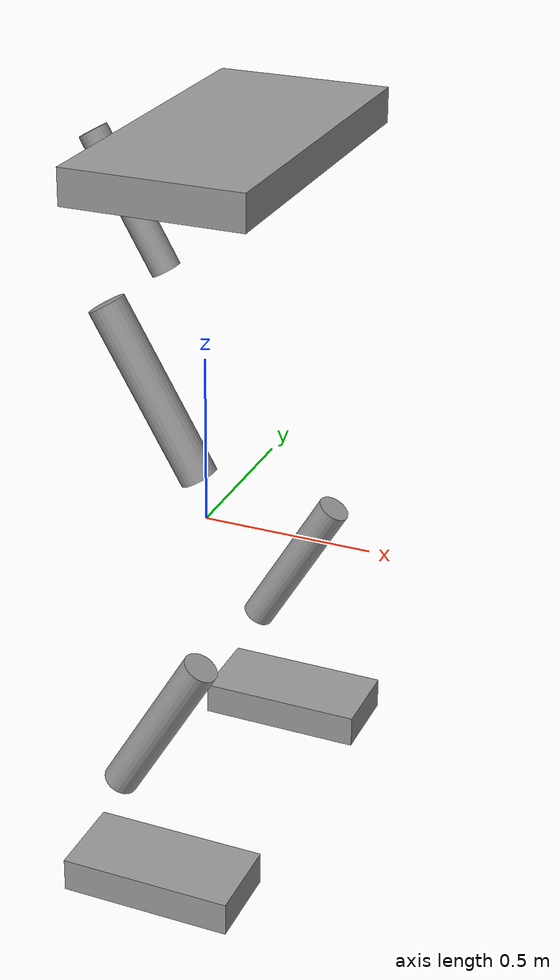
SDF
<?xml version='1.0'?>
<sdf version='1.7'>
  <model name='HumanoidRobot'>
    <link name='link_0'>
      <inertial>
        <mass>1</mass>
        <inertia>
          <ixx>0.166667</ixx>
          <ixy>0</ixy>
          <ixz>0</ixz>
          <iyy>0.166667</iyy>
          <iyz>0</iyz>
          <izz>0.166667</izz>
        </inertia>
        <pose>0 0 0 0 -0 0</pose>
      </inertial>
      <pose>0.101249 -0.044516 1.14286 0 -0 0</pose>
      <gravity>1</gravity>
      <self_collide>0</self_collide>
      <kinematic>0</kinematic>
      <enable_wind>0</enable_wind>
      <visual name='visual'>
        <pose>0 0 0 0 -0 0</pose>
        <geometry>
          <box>
            <size>0.5 1 0.1</size>
          </box>
        </geometry>
        <material>
          <lighting>1</lighting>
          <script>
            <uri>file://media/materials/scripts/gazebo.material</uri>
            <name>Gazebo/Grey</name>
          </script>
          <shader type='pixel'>
            <normal_map>__default__</normal_map>
          </shader>
          <ambient>0.3 0.3 0.3 1</ambient>
          <diffuse>0.7 0.7 0.7 1</diffuse>
          <specular>0.01 0.01 0.01 1</specular>
          <emissive>0 0 0 1</emissive>
        </material>
        <transparency>0</transparency>
        <cast_shadows>1</cast_shadows>
      </visual>
      <collision name='collision'>
        <laser_retro>0</laser_retro>
        <max_contacts>10</max_contacts>
        <pose>0 0 0 0 -0 0</pose>
        <geometry>
          <box>
            <size>0.5 1 0.1</size>
          </box>
        </geometry>
        <surface>
          <friction>
            <ode>
              <mu>1</mu>
              <mu2>1</mu2>
              <fdir1>0 0 0</fdir1>
              <slip1>0</slip1>
              <slip2>0</slip2>
            </ode>
            <torsional>
              <coefficient>1</coefficient>
              <patch_radius>0</patch_radius>
              <surface_radius>0</surface_radius>
              <use_patch_radius>1</use_patch_radius>
              <ode>
                <slip>0</slip>
              </ode>
            </torsional>
          </friction>
          <bounce>
            <restitution_coefficient>0</restitution_coefficient>
            <threshold>1e+06</threshold>
          </bounce>
          <contact>
            <collide_without_contact>0</collide_without_contact>
            <collide_without_contact_bitmask>1</collide_without_contact_bitmask>
            <collide_bitmask>1</collide_bitmask>
            <ode>
              <soft_cfm>0</soft_cfm>
              <soft_erp>0.2</soft_erp>
              <kp>1e+13</kp>
              <kd>1</kd>
              <max_vel>0.01</max_vel>
              <min_depth>0</min_depth>
            </ode>
            <bullet>
              <split_impulse>1</split_impulse>
              <split_impulse_penetration_threshold>-0.01</split_impulse_penetration_threshold>
              <soft_cfm>0</soft_cfm>
              <soft_erp>0.2</soft_erp>
              <kp>1e+13</kp>
              <kd>1</kd>
            </bullet>
          </contact>
        </surface>
      </collision>
    </link>
    <link name='link_1'>
      <inertial>
        <mass>1</mass>
        <inertia>
          <ixx>0.145833</ixx>
          <ixy>0</ixy>
          <ixz>0</ixz>
          <iyy>0.145833</iyy>
          <iyz>0</iyz>
          <izz>0.125</izz>
        </inertia>
        <pose>0 0 0 0 -0 0</pose>
      </inertial>
      <pose>0.101249 -0.544516 0.642857 0 -0.523598 0</pose>
      <gravity>1</gravity>
      <self_collide>0</self_collide>
      <kinematic>0</kinematic>
      <enable_wind>0</enable_wind>
      <visual name='visual'>
        <pose>0 0 0 0 -0 0</pose>
        <geometry>
          <cylinder>
            <radius>0.05</radius>
            <length>0.5</length>
          </cylinder>
        </geometry>
        <material>
          <lighting>1</lighting>
          <script>
            <uri>file://media/materials/scripts/gazebo.material</uri>
            <name>Gazebo/Grey</name>
          </script>
          <shader type='pixel'>
            <normal_map>__default__</normal_map>
          </shader>
          <ambient>0.3 0.3 0.3 1</ambient>
          <diffuse>0.7 0.7 0.7 1</diffuse>
          <specular>0.01 0.01 0.01 1</specular>
          <emissive>0 0 0 1</emissive>
        </material>
        <transparency>0</transparency>
        <cast_shadows>1</cast_shadows>
      </visual>
      <collision name='collision'>
        <laser_retro>0</laser_retro>
        <max_contacts>10</max_contacts>
        <pose>0 0 0 0 -0 0</pose>
        <geometry>
          <cylinder>
            <radius>0.05</radius>
            <length>0.5</length>
          </cylinder>
        </geometry>
        <surface>
          <friction>
            <ode>
              <mu>1</mu>
              <mu2>1</mu2>
              <fdir1>0 0 0</fdir1>
              <slip1>0</slip1>
              <slip2>0</slip2>
            </ode>
            <torsional>
              <coefficient>1</coefficient>
              <patch_radius>0</patch_radius>
              <surface_radius>0</surface_radius>
              <use_patch_radius>1</use_patch_radius>
              <ode>
                <slip>0</slip>
              </ode>
            </torsional>
          </friction>
          <bounce>
            <restitution_coefficient>0</restitution_coefficient>
            <threshold>1e+06</threshold>
          </bounce>
          <contact>
            <collide_without_contact>0</collide_without_contact>
            <collide_without_contact_bitmask>1</collide_without_contact_bitmask>
            <collide_bitmask>1</collide_bitmask>
            <ode>
              <soft_cfm>0</soft_cfm>
              <soft_erp>0.2</soft_erp>
              <kp>1e+13</kp>
              <kd>1</kd>
              <max_vel>0.01</max_vel>
              <min_depth>0</min_depth>
            </ode>
            <bullet>
              <split_impulse>1</split_impulse>
              <split_impulse_penetration_threshold>-0.01</split_impulse_penetration_threshold>
              <soft_cfm>0</soft_cfm>
              <soft_erp>0.2</soft_erp>
              <kp>1e+13</kp>
              <kd>1</kd>
            </bullet>
          </contact>
        </surface>
      </collision>
    </link>
    <link name='link_1_clone'>
      <inertial>
        <mass>1</mass>
        <inertia>
          <ixx>0.145833</ixx>
          <ixy>0</ixy>
          <ixz>0</ixz>
          <iyy>0.145833</iyy>
          <iyz>0</iyz>
          <izz>0.125</izz>
        </inertia>
        <pose>0 0 0 0 -0 0</pose>
      </inertial>
      <pose>-0.607493 0.767097 0.642857 0 -0.523598 0</pose>
      <gravity>1</gravity>
      <self_collide>0</self_collide>
      <kinematic>0</kinematic>
      <enable_wind>0</enable_wind>
      <visual name='visual'>
        <pose>0 0 0 0 -0 0</pose>
        <geometry>
          <cylinder>
            <radius>0.05</radius>
            <length>0.5</length>
          </cylinder>
        </geometry>
        <material>
          <lighting>1</lighting>
          <script>
            <uri>file://media/materials/scripts/gazebo.material</uri>
            <name>Gazebo/Grey</name>
          </script>
          <shader type='pixel'>
            <normal_map>__default__</normal_map>
          </shader>
          <ambient>0.3 0.3 0.3 1</ambient>
          <diffuse>0.7 0.7 0.7 1</diffuse>
          <specular>0.01 0.01 0.01 1</specular>
          <emissive>0 0 0 1</emissive>
        </material>
        <transparency>0</transparency>
        <cast_shadows>1</cast_shadows>
      </visual>
      <collision name='collision'>
        <laser_retro>0</laser_retro>
        <max_contacts>10</max_contacts>
        <pose>0 0 0 0 -0 0</pose>
        <geometry>
          <cylinder>
            <radius>0.05</radius>
            <length>0.5</length>
          </cylinder>
        </geometry>
        <surface>
          <friction>
            <ode>
              <mu>1</mu>
              <mu2>1</mu2>
              <fdir1>0 0 0</fdir1>
              <slip1>0</slip1>
              <slip2>0</slip2>
            </ode>
            <torsional>
              <coefficient>1</coefficient>
              <patch_radius>0</patch_radius>
              <surface_radius>0</surface_radius>
              <use_patch_radius>1</use_patch_radius>
              <ode>
                <slip>0</slip>
              </ode>
            </torsional>
          </friction>
          <bounce>
            <restitution_coefficient>0</restitution_coefficient>
            <threshold>1e+06</threshold>
          </bounce>
          <contact>
            <collide_without_contact>0</collide_without_contact>
            <collide_without_contact_bitmask>1</collide_without_contact_bitmask>
            <collide_bitmask>1</collide_bitmask>
            <ode>
              <soft_cfm>0</soft_cfm>
              <soft_erp>0.2</soft_erp>
              <kp>1e+13</kp>
              <kd>1</kd>
              <max_vel>0.01</max_vel>
              <min_depth>0</min_depth>
            </ode>
            <bullet>
              <split_impulse>1</split_impulse>
              <split_impulse_penetration_threshold>-0.01</split_impulse_penetration_threshold>
              <soft_cfm>0</soft_cfm>
              <soft_erp>0.2</soft_erp>
              <kp>1e+13</kp>
              <kd>1</kd>
            </bullet>
          </contact>
        </surface>
      </collision>
    </link>
    <link name='link_1_clone_0'>
      <inertial>
        <mass>1</mass>
        <inertia>
          <ixx>0.145833</ixx>
          <ixy>0</ixy>
          <ixz>0</ixz>
          <iyy>0.145833</iyy>
          <iyz>0</iyz>
          <izz>0.125</izz>
        </inertia>
        <pose>0 0 0 0 -0 0</pose>
      </inertial>
      <pose>0.101249 -0.544516 -0.357143 0 0.523598 0</pose>
      <gravity>1</gravity>
      <self_collide>0</self_collide>
      <kinematic>0</kinematic>
      <enable_wind>0</enable_wind>
      <visual name='visual'>
        <pose>0 0 0 0 -0 0</pose>
        <geometry>
          <cylinder>
            <radius>0.05</radius>
            <length>0.5</length>
          </cylinder>
        </geometry>
        <material>
          <lighting>1</lighting>
          <script>
            <uri>file://media/materials/scripts/gazebo.material</uri>
            <name>Gazebo/Grey</name>
          </script>
          <shader type='pixel'>
            <normal_map>__default__</normal_map>
          </shader>
          <ambient>0.3 0.3 0.3 1</ambient>
          <diffuse>0.7 0.7 0.7 1</diffuse>
          <specular>0.01 0.01 0.01 1</specular>
          <emissive>0 0 0 1</emissive>
        </material>
        <transparency>0</transparency>
        <cast_shadows>1</cast_shadows>
      </visual>
      <collision name='collision'>
        <laser_retro>0</laser_retro>
        <max_contacts>10</max_contacts>
        <pose>0 0 0 0 -0 0</pose>
        <geometry>
          <cylinder>
            <radius>0.05</radius>
            <length>0.5</length>
          </cylinder>
        </geometry>
        <surface>
          <friction>
            <ode>
              <mu>1</mu>
              <mu2>1</mu2>
              <fdir1>0 0 0</fdir1>
              <slip1>0</slip1>
              <slip2>0</slip2>
            </ode>
            <torsional>
              <coefficient>1</coefficient>
              <patch_radius>0</patch_radius>
              <surface_radius>0</surface_radius>
              <use_patch_radius>1</use_patch_radius>
              <ode>
                <slip>0</slip>
              </ode>
            </torsional>
          </friction>
          <bounce>
            <restitution_coefficient>0</restitution_coefficient>
            <threshold>1e+06</threshold>
          </bounce>
          <contact>
            <collide_without_contact>0</collide_without_contact>
            <collide_without_contact_bitmask>1</collide_without_contact_bitmask>
            <collide_bitmask>1</collide_bitmask>
            <ode>
              <soft_cfm>0</soft_cfm>
              <soft_erp>0.2</soft_erp>
              <kp>1e+13</kp>
              <kd>1</kd>
              <max_vel>0.01</max_vel>
              <min_depth>0</min_depth>
            </ode>
            <bullet>
              <split_impulse>1</split_impulse>
              <split_impulse_penetration_threshold>-0.01</split_impulse_penetration_threshold>
              <soft_cfm>0</soft_cfm>
              <soft_erp>0.2</soft_erp>
              <kp>1e+13</kp>
              <kd>1</kd>
            </bullet>
          </contact>
        </surface>
      </collision>
    </link>
    <link name='link_1_clone_1'>
      <inertial>
        <mass>1</mass>
        <inertia>
          <ixx>0.145833</ixx>
          <ixy>0</ixy>
          <ixz>0</ixz>
          <iyy>0.145833</iyy>
          <iyz>0</iyz>
          <izz>0.125</izz>
        </inertia>
        <pose>0 0 0 0 -0 0</pose>
      </inertial>
      <pose>0.101249 0.455484 -0.357143 0 0.523598 0</pose>
      <gravity>1</gravity>
      <self_collide>0</self_collide>
      <kinematic>0</kinematic>
      <enable_wind>0</enable_wind>
      <visual name='visual'>
        <pose>0 0 0 0 -0 0</pose>
        <geometry>
          <cylinder>
            <radius>0.05</radius>
            <length>0.5</length>
          </cylinder>
        </geometry>
        <material>
          <lighting>1</lighting>
          <script>
            <uri>file://media/materials/scripts/gazebo.material</uri>
            <name>Gazebo/Grey</name>
          </script>
          <shader type='pixel'>
            <normal_map>__default__</normal_map>
          </shader>
          <ambient>0.3 0.3 0.3 1</ambient>
          <diffuse>0.7 0.7 0.7 1</diffuse>
          <specular>0.01 0.01 0.01 1</specular>
          <emissive>0 0 0 1</emissive>
        </material>
        <transparency>0</transparency>
        <cast_shadows>1</cast_shadows>
      </visual>
      <collision name='collision'>
        <laser_retro>0</laser_retro>
        <max_contacts>10</max_contacts>
        <pose>0 0 0 0 -0 0</pose>
        <geometry>
          <cylinder>
            <radius>0.05</radius>
            <length>0.5</length>
          </cylinder>
        </geometry>
        <surface>
          <friction>
            <ode>
              <mu>1</mu>
              <mu2>1</mu2>
              <fdir1>0 0 0</fdir1>
              <slip1>0</slip1>
              <slip2>0</slip2>
            </ode>
            <torsional>
              <coefficient>1</coefficient>
              <patch_radius>0</patch_radius>
              <surface_radius>0</surface_radius>
              <use_patch_radius>1</use_patch_radius>
              <ode>
                <slip>0</slip>
              </ode>
            </torsional>
          </friction>
          <bounce>
            <restitution_coefficient>0</restitution_coefficient>
            <threshold>1e+06</threshold>
          </bounce>
          <contact>
            <collide_without_contact>0</collide_without_contact>
            <collide_without_contact_bitmask>1</collide_without_contact_bitmask>
            <collide_bitmask>1</collide_bitmask>
            <ode>
              <soft_cfm>0</soft_cfm>
              <soft_erp>0.2</soft_erp>
              <kp>1e+13</kp>
              <kd>1</kd>
              <max_vel>0.01</max_vel>
              <min_depth>0</min_depth>
            </ode>
            <bullet>
              <split_impulse>1</split_impulse>
              <split_impulse_penetration_threshold>-0.01</split_impulse_penetration_threshold>
              <soft_cfm>0</soft_cfm>
              <soft_erp>0.2</soft_erp>
              <kp>1e+13</kp>
              <kd>1</kd>
            </bullet>
          </contact>
        </surface>
      </collision>
    </link>
    <link name='link_2'>
      <inertial>
        <mass>1</mass>
        <inertia>
          <ixx>0.166667</ixx>
          <ixy>0</ixy>
          <ixz>0</ixz>
          <iyy>0.166667</iyy>
          <iyz>0</iyz>
          <izz>0.166667</izz>
        </inertia>
        <pose>0 0 0 0 -0 0</pose>
      </inertial>
      <pose>0.101249 -0.544516 -0.857143 0 -0 0</pose>
      <gravity>1</gravity>
      <self_collide>0</self_collide>
      <kinematic>0</kinematic>
      <enable_wind>0</enable_wind>
      <visual name='visual'>
        <pose>0 0 0 0 -0 0</pose>
        <geometry>
          <box>
            <size>0.5 0.25 0.1</size>
          </box>
        </geometry>
        <material>
          <lighting>1</lighting>
          <script>
            <uri>file://media/materials/scripts/gazebo.material</uri>
            <name>Gazebo/Grey</name>
          </script>
          <shader type='pixel'>
            <normal_map>__default__</normal_map>
          </shader>
          <ambient>0.3 0.3 0.3 1</ambient>
          <diffuse>0.7 0.7 0.7 1</diffuse>
          <specular>0.01 0.01 0.01 1</specular>
          <emissive>0 0 0 1</emissive>
        </material>
        <transparency>0</transparency>
        <cast_shadows>1</cast_shadows>
      </visual>
      <collision name='collision'>
        <laser_retro>0</laser_retro>
        <max_contacts>10</max_contacts>
        <pose>0 0 0 0 -0 0</pose>
        <geometry>
          <box>
            <size>0.5 0.25 0.1</size>
          </box>
        </geometry>
        <surface>
          <friction>
            <ode>
              <mu>1</mu>
              <mu2>1</mu2>
              <fdir1>0 0 0</fdir1>
              <slip1>0</slip1>
              <slip2>0</slip2>
            </ode>
            <torsional>
              <coefficient>1</coefficient>
              <patch_radius>0</patch_radius>
              <surface_radius>0</surface_radius>
              <use_patch_radius>1</use_patch_radius>
              <ode>
                <slip>0</slip>
              </ode>
            </torsional>
          </friction>
          <bounce>
            <restitution_coefficient>0</restitution_coefficient>
            <threshold>1e+06</threshold>
          </bounce>
          <contact>
            <collide_without_contact>0</collide_without_contact>
            <collide_without_contact_bitmask>1</collide_without_contact_bitmask>
            <collide_bitmask>1</collide_bitmask>
            <ode>
              <soft_cfm>0</soft_cfm>
              <soft_erp>0.2</soft_erp>
              <kp>1e+13</kp>
              <kd>1</kd>
              <max_vel>0.01</max_vel>
              <min_depth>0</min_depth>
            </ode>
            <bullet>
              <split_impulse>1</split_impulse>
              <split_impulse_penetration_threshold>-0.01</split_impulse_penetration_threshold>
              <soft_cfm>0</soft_cfm>
              <soft_erp>0.2</soft_erp>
              <kp>1e+13</kp>
              <kd>1</kd>
            </bullet>
          </contact>
        </surface>
      </collision>
    </link>
    <link name='link_2_clone'>
      <inertial>
        <mass>1</mass>
        <inertia>
          <ixx>0.166667</ixx>
          <ixy>0</ixy>
          <ixz>0</ixz>
          <iyy>0.166667</iyy>
          <iyz>0</iyz>
          <izz>0.166667</izz>
        </inertia>
        <pose>0 0 0 0 -0 0</pose>
      </inertial>
      <pose>0.101249 0.455484 -0.857143 0 -0 0</pose>
      <gravity>1</gravity>
      <self_collide>0</self_collide>
      <kinematic>0</kinematic>
      <enable_wind>0</enable_wind>
      <visual name='visual'>
        <pose>0 0 0 0 -0 0</pose>
        <geometry>
          <box>
            <size>0.5 0.25 0.1</size>
          </box>
        </geometry>
        <material>
          <lighting>1</lighting>
          <script>
            <uri>file://media/materials/scripts/gazebo.material</uri>
            <name>Gazebo/Grey</name>
          </script>
          <shader type='pixel'>
            <normal_map>__default__</normal_map>
          </shader>
          <ambient>0.3 0.3 0.3 1</ambient>
          <diffuse>0.7 0.7 0.7 1</diffuse>
          <specular>0.01 0.01 0.01 1</specular>
          <emissive>0 0 0 1</emissive>
        </material>
        <transparency>0</transparency>
        <cast_shadows>1</cast_shadows>
      </visual>
      <collision name='collision'>
        <laser_retro>0</laser_retro>
        <max_contacts>10</max_contacts>
        <pose>0 0 0 0 -0 0</pose>
        <geometry>
          <box>
            <size>0.5 0.25 0.1</size>
          </box>
        </geometry>
        <surface>
          <friction>
            <ode>
              <mu>1</mu>
              <mu2>1</mu2>
              <fdir1>0 0 0</fdir1>
              <slip1>0</slip1>
              <slip2>0</slip2>
            </ode>
            <torsional>
              <coefficient>1</coefficient>
              <patch_radius>0</patch_radius>
              <surface_radius>0</surface_radius>
              <use_patch_radius>1</use_patch_radius>
              <ode>
                <slip>0</slip>
              </ode>
            </torsional>
          </friction>
          <bounce>
            <restitution_coefficient>0</restitution_coefficient>
            <threshold>1e+06</threshold>
          </bounce>
          <contact>
            <collide_without_contact>0</collide_without_contact>
            <collide_without_contact_bitmask>1</collide_without_contact_bitmask>
            <collide_bitmask>1</collide_bitmask>
            <ode>
              <soft_cfm>0</soft_cfm>
              <soft_erp>0.2</soft_erp>
              <kp>1e+13</kp>
              <kd>1</kd>
              <max_vel>0.01</max_vel>
              <min_depth>0</min_depth>
            </ode>
            <bullet>
              <split_impulse>1</split_impulse>
              <split_impulse_penetration_threshold>-0.01</split_impulse_penetration_threshold>
              <soft_cfm>0</soft_cfm>
              <soft_erp>0.2</soft_erp>
              <kp>1e+13</kp>
              <kd>1</kd>
            </bullet>
          </contact>
        </surface>
      </collision>
    </link>
    <static>0</static>
    <allow_auto_disable>1</allow_auto_disable>
  </model>
</sdf>
